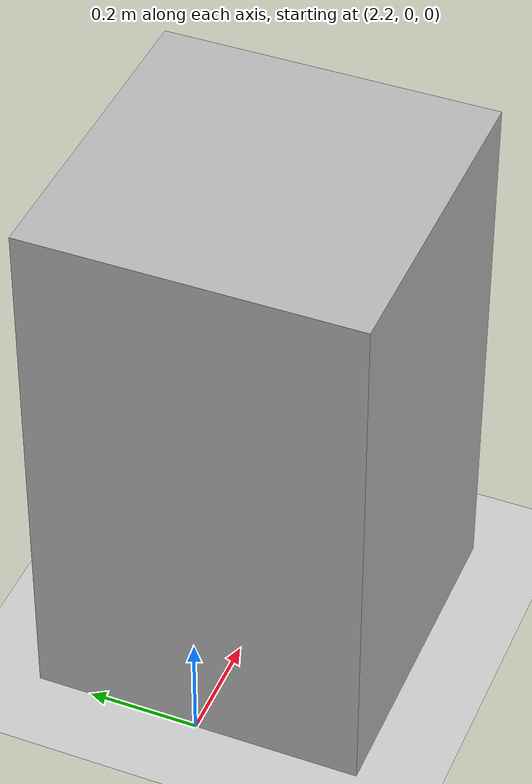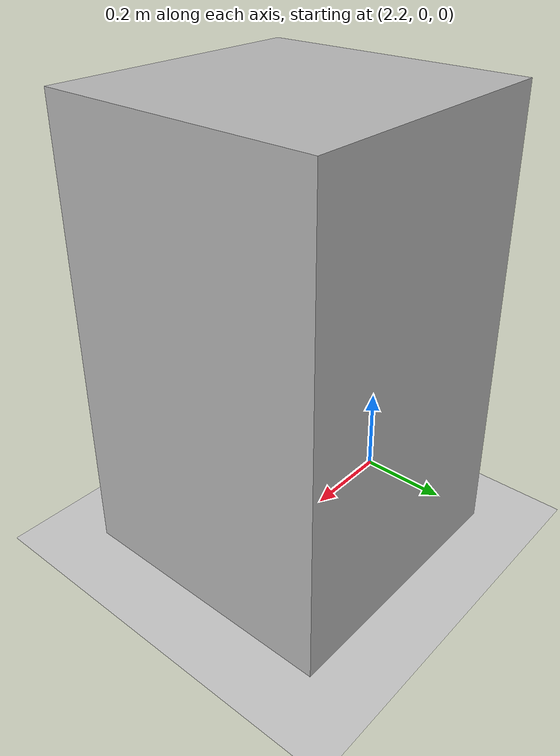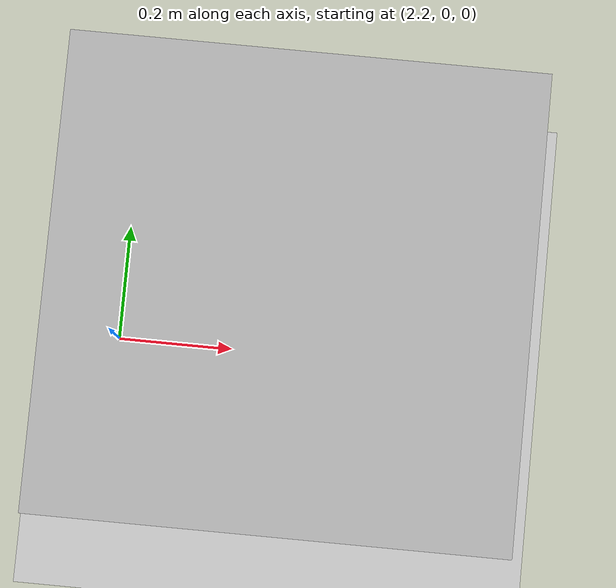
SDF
<?xml version="1.0" ?>
<sdf version="1.9">
  <world name="empty_camera">
    <plugin filename="gz-sim-physics-system" name="gz::sim::systems::Physics"/>
    <plugin filename="gz-sim-user-commands-system" name="gz::sim::systems::UserCommands"/>
    <plugin filename="gz-sim-scene-broadcaster-system" name="gz::sim::systems::SceneBroadcaster"/>
    <plugin filename="gz-sim-sensors-system" name="gz::sim::systems::Sensors"><render_engine>ogre</render_engine></plugin>
    <gravity>0 0 -9.8</gravity>
    <scene><ambient>0.8 0.8 0.8 1.0</ambient><background>0.7 0.7 0.7 1.0</background><shadows>true</shadows></scene>
    <light type="directional" name="sun">
      <cast_shadows>true</cast_shadows><pose>0 0 10 0 0 0</pose><diffuse>0.9 0.9 0.9 1</diffuse><specular>0.2 0.2 0.2 1</specular>
      <attenuation><range>1000</range><constant>0.9</constant><linear>0.01</linear><quadratic>0.001</quadratic></attenuation>
      <direction>-0.5 0.1 -0.9</direction>
    </light>
    <model name="ground_plane">
      <static>true</static>
      <link name="link">
        <collision name="collision"><geometry><plane><normal>0 0 1</normal><size>100 100</size></plane></geometry></collision>
        <visual name="visual"><geometry><plane><normal>0 0 1</normal><size>100 100</size></plane></geometry></visual>
      </link>
    </model>
    <model name="target_box">
      <static>true</static>
      <pose>2.5 0 0.5 0 0 0</pose>
      <link name="link">
        <collision name="collision"><geometry><box><size>0.6 0.6 1.0</size></box></geometry></collision>
        <visual name="visual"><geometry><box><size>0.6 0.6 1.0</size></box></geometry></visual>
      </link>
    </model>
  </world>
</sdf>
